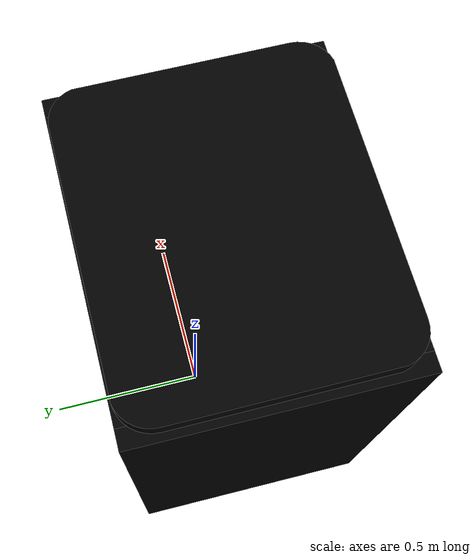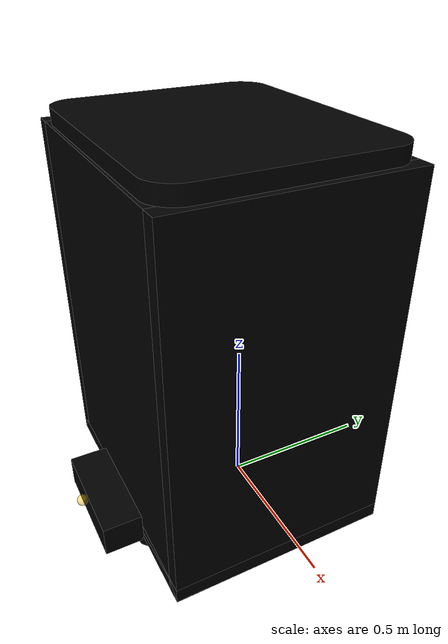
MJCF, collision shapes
<?xml version="1.0" encoding="UTF-8"?>
<mujoco model="interactive_step_trash_can">
  <!-- Source OBJ is Y-up; this root frame maps its Y axis to MuJoCo Z-up. -->
  <compiler angle="radian" autolimits="true" coordinate="local"/>
  <option timestep="0.002" gravity="0 0 -9.81" iterations="80" solver="Newton"/>
  <size njmax="2000" nconmax="400"/>

  <asset>
    <mesh name="mesh_root_0" file="meshes/root_0.obj"/>
    <mesh name="mesh_root_1" file="meshes/root_1.obj"/>
    <mesh name="mesh_root_2" file="meshes/root_2.obj"/>
    <mesh name="mesh_root_3" file="meshes/root_3.obj"/>
    <mesh name="mesh_root_4" file="meshes/root_4.obj"/>
    <texture name="trash_silver_tex" type="2d" file="textures/trash_silver_brushed.png"/>
    <!-- Color and grain come directly from the supplied brushed-silver image. -->
    <material name="trash_silver_mat" texture="trash_silver_tex"
              rgba="0.78 0.74 0.68 1" metallic="0.12" roughness="0.42"
              specular="0.45" shininess="0.72" reflectance="0.05"
              texuniform="false" texrepeat="1 1"/>
  </asset>

  <worldbody>
    <body name="trash_can" quat="0.70710678 0.70710678 0 0">
      <body name="bin">
        <!-- Fixed shell and the small fixed hardware pieces. -->
        <geom name="bin_shell_visual" type="mesh" mesh="mesh_root_0" material="trash_silver_mat"
              group="1" contype="0" conaffinity="0" mass="0"/>
        <!-- Hollow primitive collision keeps the opening usable for dropped objects. -->
        <geom name="bin_left_wall_collision" type="box" pos="-0.4125 0.628 0.08225"
              size="0.025 0.588 0.35425" group="3" mass="0"
              contype="1" conaffinity="1" condim="3" friction="0.8 0.03 0.01" rgba="0 0 0 0"/>
        <geom name="bin_right_wall_collision" type="box" pos="0.4125 0.628 0.08225"
              size="0.025 0.588 0.35425" group="3" mass="0"
              contype="1" conaffinity="1" condim="3" friction="0.8 0.03 0.01" rgba="0 0 0 0"/>
        <geom name="bin_front_wall_collision" type="box" pos="0 0.628 -0.247"
              size="0.3875 0.588 0.025" group="3" mass="0"
              contype="1" conaffinity="1" condim="3" friction="0.8 0.03 0.01" rgba="0 0 0 0"/>
        <geom name="bin_back_wall_collision" type="box" pos="0 0.628 0.4115"
              size="0.3875 0.588 0.025" group="3" mass="0"
              contype="1" conaffinity="1" condim="3" friction="0.8 0.03 0.01" rgba="0 0 0 0"/>
        <geom name="bin_bottom_collision" type="box" pos="0 0.065 0.08225"
              size="0.4375 0.025 0.35425" group="3" mass="0"
              contype="1" conaffinity="1" condim="3" friction="0.8 0.03 0.01" rgba="0 0 0 0"/>
        <geom name="bin_base_visual" type="mesh" mesh="mesh_root_2" material="trash_silver_mat"
              group="1" contype="0" conaffinity="0" mass="0"/>
        <geom name="bin_base_collision" type="mesh" mesh="mesh_root_2"
              group="3" contype="1" conaffinity="1" condim="3" friction="0.8 0.03 0.01"
              rgba="0 0 0 0"/>
        <geom name="lid_hinge_hardware" type="mesh" mesh="mesh_root_3" material="trash_silver_mat"
              group="1" contype="0" conaffinity="0" mass="0"/>
      </body>

      <body name="lid" pos="0 1.205 -0.310" quat="0.60876143 0.79335334 0 0" gravcomp="1">
        <joint name="lid_hinge_joint" type="hinge" axis="-1 0 0"
               range="0 1.3962634" limited="true" damping="0.004"
               stiffness="0.04" springref="0" armature="0.0002"/>
        <geom name="lid_mesh_visual" type="mesh" mesh="mesh_root_1" pos="0 0 0"
              material="trash_silver_mat" group="1" contype="0" conaffinity="0" mass="0"/>
        <geom name="lid_mesh_collision" type="mesh" mesh="mesh_root_1" pos="0 0 0"
              group="3" mass="0.12" contype="1" conaffinity="1"
              condim="3" friction="0.8 0.03 0.01" rgba="0 0 0 0"/>
      </body>

      <!-- OBJ coordinates: pedal hinge is near (0, 0.075, 0.455). -->
      <!-- Lift the pedal 2 cm in source Y (1 cm after the task scale) so its
           full ten-degree travel clears the ground plane. -->
      <body name="pedal" pos="0 0.095 0.455" gravcomp="1">
        <joint name="pedal_hinge_joint" type="hinge" axis="-1 0 0"
               range="-0.17453293 0" limited="true" damping="0.005"
               stiffness="0.005" springref="0" armature="0.0001"/>
        <geom name="pedal_mesh_visual" type="mesh" mesh="mesh_root_4" pos="0 -0.075 -0.455"
              material="trash_silver_mat" group="1" contype="0" conaffinity="0" mass="0"/>
        <!-- Axis-aligned box matching the visual pedal mesh bounds. -->
        <geom name="pedal_mesh_collision" type="box"
              pos="-0.000784 -0.0134095 -0.0059935" size="0.17574 0.0515675 0.1124085"
              group="3" mass="0.05" contype="1" conaffinity="1"
              condim="4" friction="1.2 0.04 0.02" rgba="0 0 0 0"/>
        <site name="foot_press_site" pos="0 0.015 0.12" size="0.018"
              rgba="0.95 0.75 0.05 0.45"/>
      </body>
    </body>
  </worldbody>

  <!-- Ten degrees of pedal travel opens the lid through its full 80-degree range. -->
  <equality>
    <joint name="pedal_lid_linkage" joint1="lid_hinge_joint" joint2="pedal_hinge_joint"
           polycoef="0 -8 0 0 0" solref="0.004 0.7" solimp="0.95 0.99 0.001"/>
  </equality>
  <contact>
    <!-- The pieces are mechanically connected; avoid self-collision jitter. -->
    <exclude body1="lid" body2="bin"/>
    <exclude body1="pedal" body2="bin"/>
  </contact>
</mujoco>
